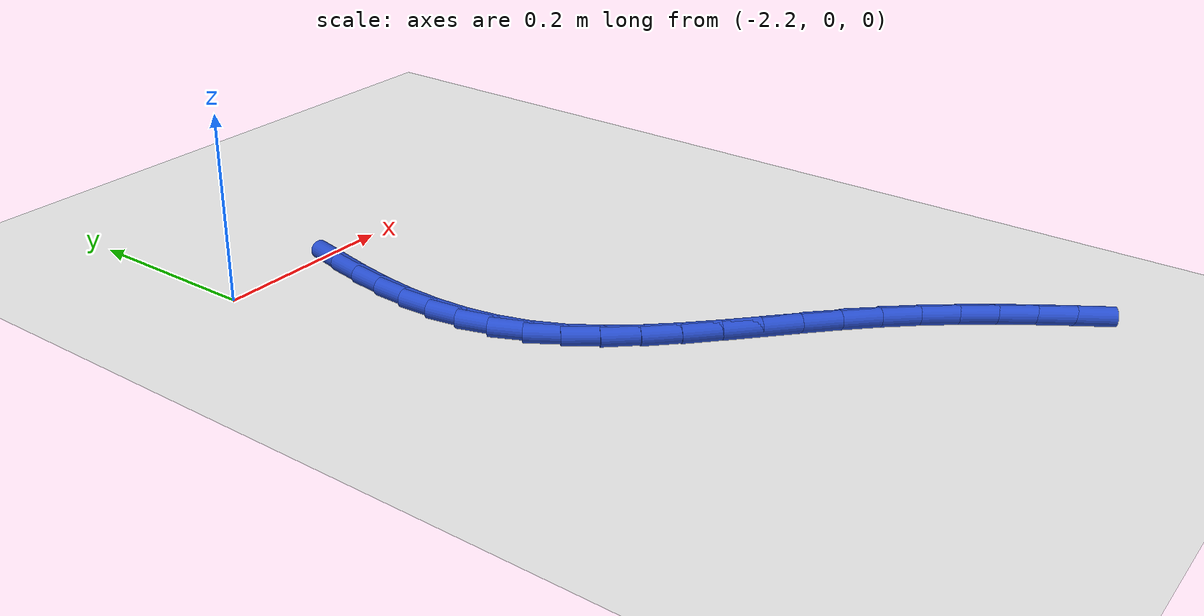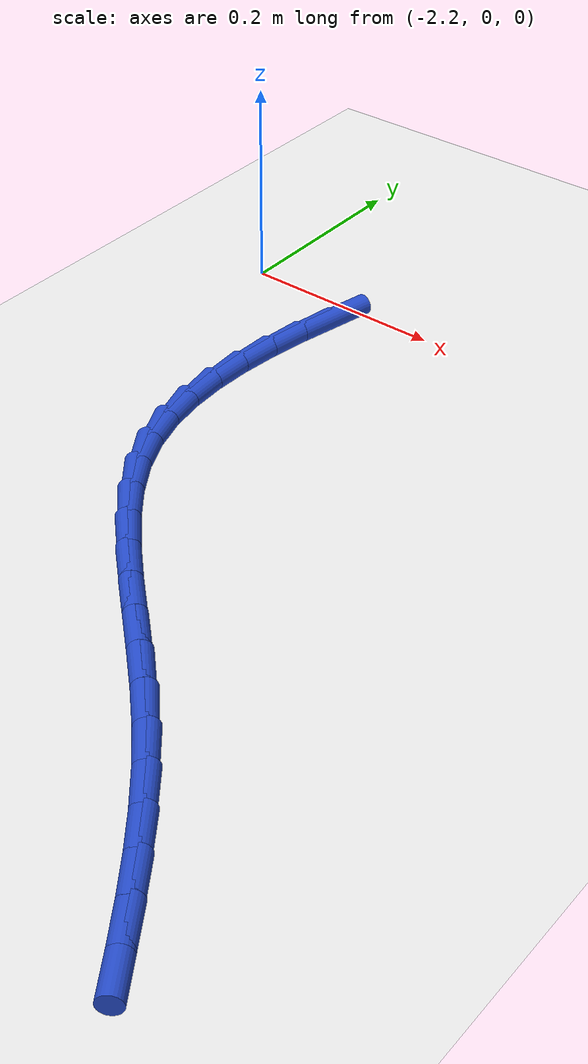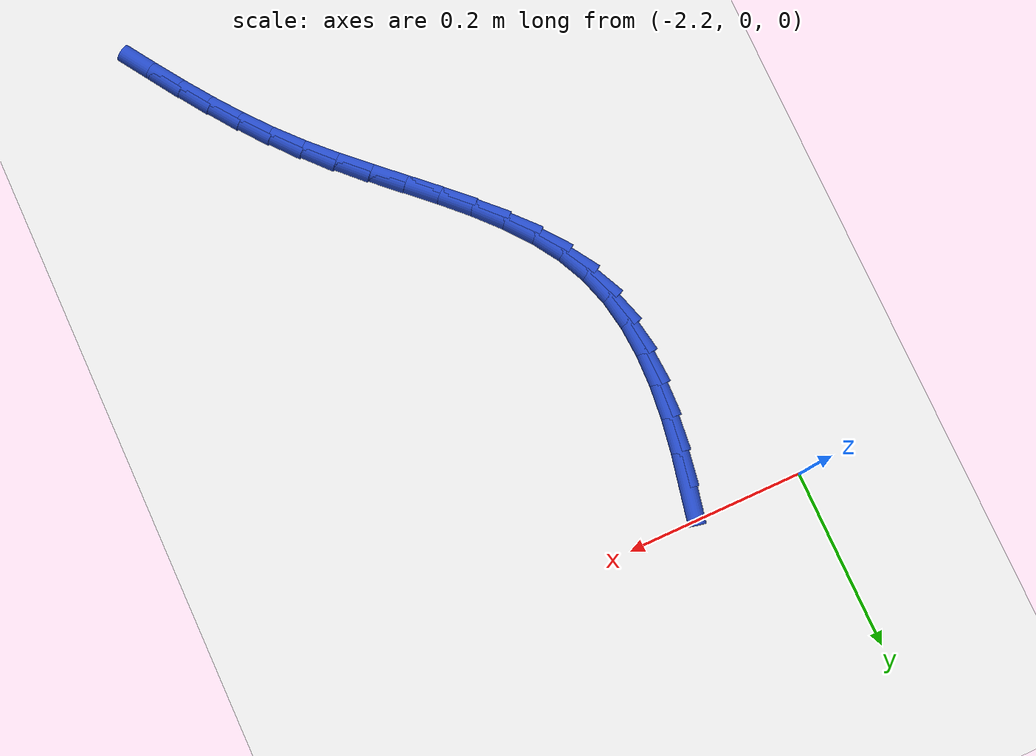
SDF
<sdf version="1.6">
 <world name="default">
  <model name="ground_plane">
   <static>1</static>
   <link name="link">
    <collision name="collision">
     <geometry><plane><normal>0 0 1</normal><size>100 100</size></plane></geometry>
     <surface><friction><ode><mu>100</mu><mu2>50</mu2></ode></friction></surface>
    </collision>
    <visual name="visual">
     <cast_shadows>0</cast_shadows>
     <geometry><plane><normal>0 0 1</normal><size>100 100</size></plane></geometry>
     <material>
      <script><uri>file://media/materials/scripts/gazebo.material</uri><name>Gazebo/WhiteGlow</name></script>
     </material>
    </visual>
   </link>
  </model>
  <model name="line">
   <link name="link_84">
    <pose>-2.0836664387315333 -0.03451287662008594 0.01 0 1.57 1.3602142777690576</pose>
    <collision name="collision">
     <geometry><cylinder><radius>0.01</radius><length>0.08</length></cylinder></geometry>
    </collision>
    <visual name="visual">
     <material>
      <script><name>Gazebo/Blue</name><uri>file://media/materials/scripts/gazebo.material</uri></script>
     </material>
     <geometry><cylinder><radius>0.01</radius><length>0.08</length></cylinder></geometry>
    </visual>
   </link>
   <link name="link_85">
    <pose>-2.092094135153938 -0.07394050960097981 0.01 0 1.57 1.4061462886673595</pose>
    <collision name="collision">
     <geometry><cylinder><radius>0.01</radius><length>0.08</length></cylinder></geometry>
    </collision>
    <visual name="visual">
     <material>
      <script><name>Gazebo/Blue</name><uri>file://media/materials/scripts/gazebo.material</uri></script>
     </material>
     <geometry><cylinder><radius>0.01</radius><length>0.08</length></cylinder></geometry>
    </visual>
   </link>
   <link name="link_86">
    <pose>-2.0985309731781037 -0.11268065155676804 0.01 0 1.57 1.4657595312341334</pose>
    <collision name="collision">
     <geometry><cylinder><radius>0.01</radius><length>0.08</length></cylinder></geometry>
    </collision>
    <visual name="visual">
     <material>
      <script><name>Gazebo/Blue</name><uri>file://media/materials/scripts/gazebo.material</uri></script>
     </material>
     <geometry><cylinder><radius>0.01</radius><length>0.08</length></cylinder></geometry>
    </visual>
   </link>
   <link name="link_87">
    <pose>-2.1025281287865427 -0.1505954119961922 0.01 0 1.57 1.5408024958468327</pose>
    <collision name="collision">
     <geometry><cylinder><radius>0.01</radius><length>0.08</length></cylinder></geometry>
    </collision>
    <visual name="visual">
     <material>
      <script><name>Gazebo/Blue</name><uri>file://media/materials/scripts/gazebo.material</uri></script>
     </material>
     <geometry><cylinder><radius>0.01</radius><length>0.08</length></cylinder></geometry>
    </visual>
   </link>
   <link name="link_88">
    <pose>-2.103636777961767 -0.18754690042799382 0.01 0 1.57 -1.5087099486330144</pose>
    <collision name="collision">
     <geometry><cylinder><radius>0.01</radius><length>0.08</length></cylinder></geometry>
    </collision>
    <visual name="visual">
     <material>
      <script><name>Gazebo/Blue</name><uri>file://media/materials/scripts/gazebo.material</uri></script>
     </material>
     <geometry><cylinder><radius>0.01</radius><length>0.08</length></cylinder></geometry>
    </visual>
   </link>
   <link name="link_89">
    <pose>-2.10140809668629 -0.22339722636091514 0.01 0 1.57 -1.3987321642752282</pose>
    <collision name="collision">
     <geometry><cylinder><radius>0.01</radius><length>0.08</length></cylinder></geometry>
    </collision>
    <visual name="visual">
     <material>
      <script><name>Gazebo/Blue</name><uri>file://media/materials/scripts/gazebo.material</uri></script>
     </material>
     <geometry><cylinder><radius>0.01</radius><length>0.08</length></cylinder></geometry>
    </visual>
   </link>
   <link name="link_90">
    <pose>-2.0953932609426227 -0.2580084993036964 0.01 0 1.57 -1.271641502561442</pose>
    <collision name="collision">
     <geometry><cylinder><radius>0.01</radius><length>0.08</length></cylinder></geometry>
    </collision>
    <visual name="visual">
     <material>
      <script><name>Gazebo/Blue</name><uri>file://media/materials/scripts/gazebo.material</uri></script>
     </material>
     <geometry><cylinder><radius>0.01</radius><length>0.08</length></cylinder></geometry>
    </visual>
   </link>
   <link name="link_91">
    <pose>-2.085143446713278 -0.2912428287650798 0.01 0 1.57 -1.1316368505930325</pose>
    <collision name="collision">
     <geometry><cylinder><radius>0.01</radius><length>0.08</length></cylinder></geometry>
    </collision>
    <visual name="visual">
     <material>
      <script><name>Gazebo/Blue</name><uri>file://media/materials/scripts/gazebo.material</uri></script>
     </material>
     <geometry><cylinder><radius>0.01</radius><length>0.08</length></cylinder></geometry>
    </visual>
   </link>
   <link name="link_92">
    <pose>-2.0702385947284654 -0.32297187878285166 0.01 0 1.57 -1.0021444335566447</pose>
    <collision name="collision">
     <geometry><cylinder><radius>0.01</radius><length>0.08</length></cylinder></geometry>
    </collision>
    <visual name="visual">
     <material>
      <script><name>Gazebo/Blue</name><uri>file://media/materials/scripts/gazebo.material</uri></script>
     </material>
     <geometry><cylinder><radius>0.01</radius><length>0.08</length></cylinder></geometry>
    </visual>
   </link>
   <link name="link_93">
    <pose>-2.0508747714278206 -0.3532719663626642 0.01 0 1.57 -0.9019492129944634</pose>
    <collision name="collision">
     <geometry><cylinder><radius>0.01</radius><length>0.08</length></cylinder></geometry>
    </collision>
    <visual name="visual">
     <material>
      <script><name>Gazebo/Blue</name><uri>file://media/materials/scripts/gazebo.material</uri></script>
     </material>
     <geometry><cylinder><radius>0.01</radius><length>0.08</length></cylinder></geometry>
    </visual>
   </link>
   <link name="link_94">
    <pose>-2.0278399223450356 -0.38241600769660705 0.01 0 1.57 -0.8292163314461563</pose>
    <collision name="collision">
     <geometry><cylinder><radius>0.01</radius><length>0.08</length></cylinder></geometry>
    </collision>
    <visual name="visual">
     <material>
      <script><name>Gazebo/Blue</name><uri>file://media/materials/scripts/gazebo.material</uri></script>
     </material>
     <geometry><cylinder><radius>0.01</radius><length>0.08</length></cylinder></geometry>
    </visual>
   </link>
   <link name="link_95">
    <pose>-2.001945905987909 -0.41068486193556025 0.01 0 1.57 -0.7806010277706479</pose>
    <collision name="collision">
     <geometry><cylinder><radius>0.01</radius><length>0.08</length></cylinder></geometry>
    </collision>
    <visual name="visual">
     <material>
      <script><name>Gazebo/Blue</name><uri>file://media/materials/scripts/gazebo.material</uri></script>
     </material>
     <geometry><cylinder><radius>0.01</radius><length>0.08</length></cylinder></geometry>
    </visual>
   </link>
   <link name="link_96">
    <pose>-1.9740045808642352 -0.43835938823040577 0.01 0 1.57 -0.7532941024010847</pose>
    <collision name="collision">
     <geometry><cylinder><radius>0.01</radius><length>0.08</length></cylinder></geometry>
    </collision>
    <visual name="visual">
     <material>
      <script><name>Gazebo/Blue</name><uri>file://media/materials/scripts/gazebo.material</uri></script>
     </material>
     <geometry><cylinder><radius>0.01</radius><length>0.08</length></cylinder></geometry>
    </visual>
   </link>
   <link name="link_97">
    <pose>-1.944827805481812 -0.4657204457320249 0.01 0 1.57 -0.7455112572962542</pose>
    <collision name="collision">
     <geometry><cylinder><radius>0.01</radius><length>0.08</length></cylinder></geometry>
    </collision>
    <visual name="visual">
     <material>
      <script><name>Gazebo/Blue</name><uri>file://media/materials/scripts/gazebo.material</uri></script>
     </material>
     <geometry><cylinder><radius>0.01</radius><length>0.08</length></cylinder></geometry>
    </visual>
   </link>
   <link name="link_98">
    <pose>-1.9152274383484362 -0.49304889359129905 0.01 0 1.57 -0.7566081342808237</pose>
    <collision name="collision">
     <geometry><cylinder><radius>0.01</radius><length>0.08</length></cylinder></geometry>
    </collision>
    <visual name="visual">
     <material>
      <script><name>Gazebo/Blue</name><uri>file://media/materials/scripts/gazebo.material</uri></script>
     </material>
     <geometry><cylinder><radius>0.01</radius><length>0.08</length></cylinder></geometry>
    </visual>
   </link>
   <link name="link_99">
    <pose>-1.8860153379719027 -0.5206255909591101 0.01 0 1.57 -0.7870701972161407</pose>
    <collision name="collision">
     <geometry><cylinder><radius>0.01</radius><length>0.08</length></cylinder></geometry>
    </collision>
    <visual name="visual">
     <material>
      <script><name>Gazebo/Blue</name><uri>file://media/materials/scripts/gazebo.material</uri></script>
     </material>
     <geometry><cylinder><radius>0.01</radius><length>0.08</length></cylinder></geometry>
    </visual>
   </link>
   <link name="link_100">
    <pose>-1.85800336286001 -0.5487313969863382 0.01 0 1.57 -0.8341152993728045</pose>
    <collision name="collision">
     <geometry><cylinder><radius>0.01</radius><length>0.08</length></cylinder></geometry>
    </collision>
    <visual name="visual">
     <material>
      <script><name>Gazebo/Blue</name><uri>file://media/materials/scripts/gazebo.material</uri></script>
     </material>
     <geometry><cylinder><radius>0.01</radius><length>0.08</length></cylinder></geometry>
    </visual>
   </link>
   <link name="link_101">
    <pose>-1.8318273377142265 -0.5775907092874687 0.01 0 1.57 -0.8802436031744733</pose>
    <collision name="collision">
     <geometry><cylinder><radius>0.01</radius><length>0.08</length></cylinder></geometry>
    </collision>
    <visual name="visual">
     <material>
      <script><name>Gazebo/Blue</name><uri>file://media/materials/scripts/gazebo.material</uri></script>
     </material>
     <geometry><cylinder><radius>0.01</radius><length>0.08</length></cylinder></geometry>
    </visual>
   </link>
   <link name="link_102">
    <pose>-1.8073727270883366 -0.6071872530307497 0.01 0 1.57 -0.9197733979084806</pose>
    <collision name="collision">
     <geometry><cylinder><radius>0.01</radius><length>0.08</length></cylinder></geometry>
    </collision>
    <visual name="visual">
     <material>
      <script><name>Gazebo/Blue</name><uri>file://media/materials/scripts/gazebo.material</uri></script>
     </material>
     <geometry><cylinder><radius>0.01</radius><length>0.08</length></cylinder></geometry>
    </visual>
   </link>
   <link name="link_103">
    <pose>-1.7843251005947074 -0.6374406385661127 0.01 0 1.57 -0.9519709376212624</pose>
    <collision name="collision">
     <geometry><cylinder><radius>0.01</radius><length>0.08</length></cylinder></geometry>
    </collision>
    <visual name="visual">
     <material>
      <script><name>Gazebo/Blue</name><uri>file://media/materials/scripts/gazebo.material</uri></script>
     </material>
     <geometry><cylinder><radius>0.01</radius><length>0.08</length></cylinder></geometry>
    </visual>
   </link>
   <link name="link_104">
    <pose>-1.7623700260599726 -0.6682704756707285 0.01 0 1.57 -0.9763458041177044</pose>
    <collision name="collision">
     <geometry><cylinder><radius>0.01</radius><length>0.08</length></cylinder></geometry>
    </collision>
    <visual name="visual">
     <material>
      <script><name>Gazebo/Blue</name><uri>file://media/materials/scripts/gazebo.material</uri></script>
     </material>
     <geometry><cylinder><radius>0.01</radius><length>0.08</length></cylinder></geometry>
    </visual>
   </link>
   <link name="link_105">
    <pose>-1.74119307131077 -0.6995963741217673 0.01 0 1.57 -0.9926238165502881</pose>
    <collision name="collision">
     <geometry><cylinder><radius>0.01</radius><length>0.08</length></cylinder></geometry>
    </collision>
    <visual name="visual">
     <material>
      <script><name>Gazebo/Blue</name><uri>file://media/materials/scripts/gazebo.material</uri></script>
     </material>
     <geometry><cylinder><radius>0.01</radius><length>0.08</length></cylinder></geometry>
    </visual>
   </link>
  </model>
 </world>
</sdf>
